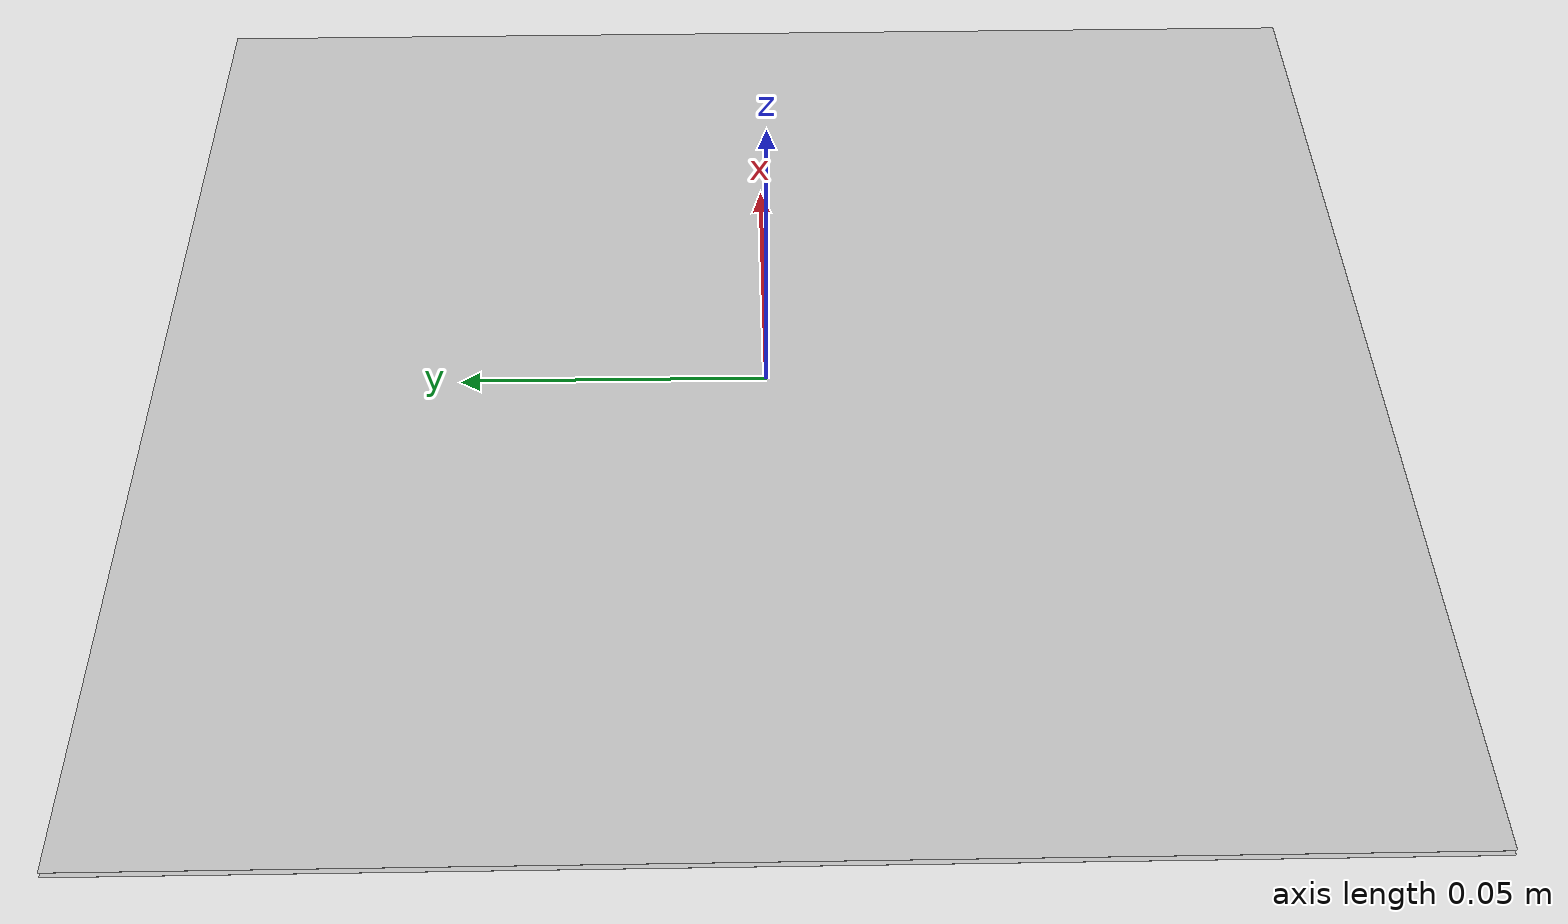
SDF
<?xml version="1.0" encoding="utf-8"?>
<sdf version="1.5">
  <model name="sign_road_narrows_from_right">
    <pose frame="">0 0 0 0 0 0</pose>
    <link name="link_0">
      <pose frame="">0 0 0 0 0 0</pose>
      <visual name="visual">
        <geometry>
          <box>
            <size>0.2 0.2 1e-5</size>
          </box>
        </geometry>
        <material>
          <script>
            <uri>model://sign_road_narrows_from_right/materials/scripts</uri>
            <uri>model://sign_road_narrows_from_right/materials/textures</uri>
            <name>sign_road_narrows_from_right/sign</name>
          </script>
        </material>
        <pose frame="">0 0 0.001 0 0 0</pose>
        <cast_shadows>1</cast_shadows>
        <transparency>0</transparency>
      </visual>
      <collision name="collision">
        <pose frame="">0 0 0.001 0 0 0</pose>
        <geometry>
          <box>
            <size>0.2 0.2 1e-5</size>
          </box>
        </geometry>
      </collision>
      <visual name="visual_backside">
        <pose frame="">0 0 0 0 0 0</pose>
        <geometry>
          <box>
            <size>0.2 0.2 1e-5</size>
          </box>
        </geometry>
        <material>
          <script>Gazebo/Grey</script>
        </material>
      </visual>
      <collision name="collision_backside">
        <pose frame="">0 0 0 0 0 0</pose>
        <geometry>
          <box>
            <size>0.2 0.2 1e-5</size>
          </box>
        </geometry>
      </collision>
    </link>
    <static>1</static>
    <allow_auto_disable>1</allow_auto_disable>
  </model>
</sdf>
